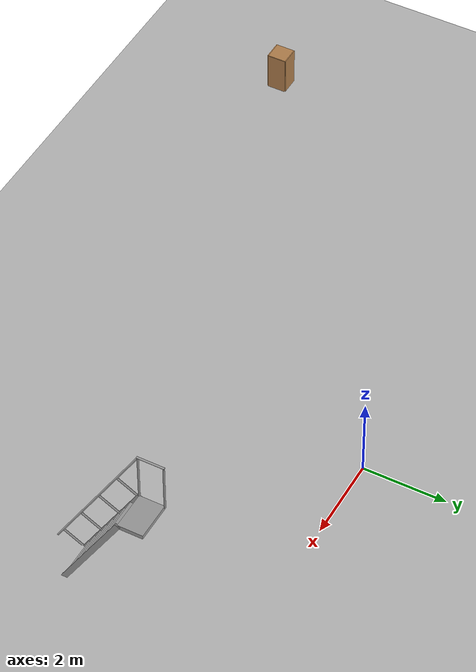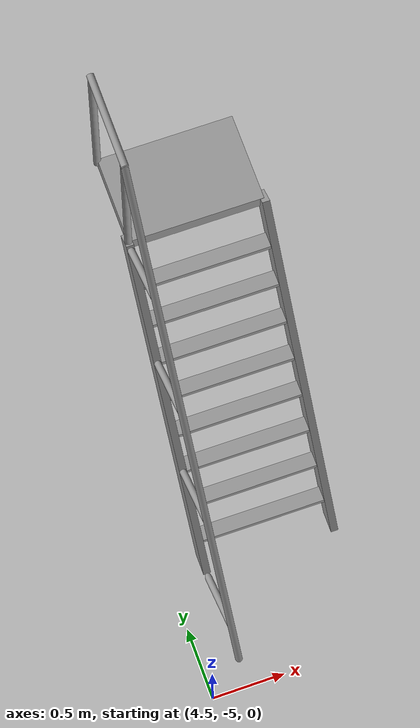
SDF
<sdf version="1.6">
 <world name="default">
  <include><uri>model://sun</uri></include>
  <model name="concrete_plane">
   <static>true</static>
   <link name="link">
    <collision name="collision"><geometry><box><size>50 23 .1</size></box></geometry></collision>
    <visual name="visual">
     <cast_shadows>false</cast_shadows>
     <geometry><box><size>50 23 .1</size></box></geometry>
     <material>
      <script>
       <uri>model://concrete_plane/materials/scripts</uri>
       <uri>model://concrete_plane/materials/textures</uri>
       <name>vrc/concrete</name>
      </script>
     </material>
    </visual>
   </link>
  </model>
  <model name="ladder_60deg_1rails">
   <static>1</static>
   <link name="step0">
    <pose>0 0.15396 0.266667 0 -0 0</pose>
    <inertial>
     <mass>9.75482</mass>
     <inertia>
      <ixx>0.00957124</ixx>
      <iyy>0.65963</iyy>
      <izz>0.666842</izz>
      <ixy>0</ixy>
      <ixz>0</ixz>
      <iyz>0</iyz>
     </inertia>
    </inertial>
    <collision name="collision"><geometry><box><size>0.9 0.1016 0.0381</size></box></geometry></collision>
    <visual name="visual">
     <geometry><box><size>0.9 0.1016 0.0381</size></box></geometry>
     <material>
      <script><uri>file://media/materials/scripts/gazebo.material</uri><name>Gazebo/Grey</name></script>
     </material>
    </visual>
   </link>
   <link name="step1">
    <pose>0 0.30792 0.533333 0 -0 0</pose>
    <inertial>
     <mass>9.75482</mass>
     <inertia>
      <ixx>0.00957124</ixx>
      <iyy>0.65963</iyy>
      <izz>0.666842</izz>
      <ixy>0</ixy>
      <ixz>0</ixz>
      <iyz>0</iyz>
     </inertia>
    </inertial>
    <collision name="collision"><geometry><box><size>0.9 0.1016 0.0381</size></box></geometry></collision>
    <visual name="visual">
     <geometry><box><size>0.9 0.1016 0.0381</size></box></geometry>
     <material>
      <script><uri>file://media/materials/scripts/gazebo.material</uri><name>Gazebo/Grey</name></script>
     </material>
    </visual>
   </link>
   <link name="step2">
    <pose>0 0.46188 0.8 0 -0 0</pose>
    <inertial>
     <mass>9.75482</mass>
     <inertia>
      <ixx>0.00957124</ixx>
      <iyy>0.65963</iyy>
      <izz>0.666842</izz>
      <ixy>0</ixy>
      <ixz>0</ixz>
      <iyz>0</iyz>
     </inertia>
    </inertial>
    <collision name="collision"><geometry><box><size>0.9 0.1016 0.0381</size></box></geometry></collision>
    <visual name="visual">
     <geometry><box><size>0.9 0.1016 0.0381</size></box></geometry>
     <material>
      <script><uri>file://media/materials/scripts/gazebo.material</uri><name>Gazebo/Grey</name></script>
     </material>
    </visual>
   </link>
   <link name="step3">
    <pose>0 0.61584 1.06667 0 -0 0</pose>
    <inertial>
     <mass>9.75482</mass>
     <inertia>
      <ixx>0.00957124</ixx>
      <iyy>0.65963</iyy>
      <izz>0.666842</izz>
      <ixy>0</ixy>
      <ixz>0</ixz>
      <iyz>0</iyz>
     </inertia>
    </inertial>
    <collision name="collision"><geometry><box><size>0.9 0.1016 0.0381</size></box></geometry></collision>
    <visual name="visual">
     <geometry><box><size>0.9 0.1016 0.0381</size></box></geometry>
     <material>
      <script><uri>file://media/materials/scripts/gazebo.material</uri><name>Gazebo/Grey</name></script>
     </material>
    </visual>
   </link>
   <link name="step4">
    <pose>0 0.7698 1.33333 0 -0 0</pose>
    <inertial>
     <mass>9.75482</mass>
     <inertia>
      <ixx>0.00957124</ixx>
      <iyy>0.65963</iyy>
      <izz>0.666842</izz>
      <ixy>0</ixy>
      <ixz>0</ixz>
      <iyz>0</iyz>
     </inertia>
    </inertial>
    <collision name="collision"><geometry><box><size>0.9 0.1016 0.0381</size></box></geometry></collision>
    <visual name="visual">
     <geometry><box><size>0.9 0.1016 0.0381</size></box></geometry>
     <material>
      <script><uri>file://media/materials/scripts/gazebo.material</uri><name>Gazebo/Grey</name></script>
     </material>
    </visual>
   </link>
   <link name="step5">
    <pose>0 0.92376 1.6 0 -0 0</pose>
    <inertial>
     <mass>9.75482</mass>
     <inertia>
      <ixx>0.00957124</ixx>
      <iyy>0.65963</iyy>
      <izz>0.666842</izz>
      <ixy>0</ixy>
      <ixz>0</ixz>
      <iyz>0</iyz>
     </inertia>
    </inertial>
    <collision name="collision"><geometry><box><size>0.9 0.1016 0.0381</size></box></geometry></collision>
    <visual name="visual">
     <geometry><box><size>0.9 0.1016 0.0381</size></box></geometry>
     <material>
      <script><uri>file://media/materials/scripts/gazebo.material</uri><name>Gazebo/Grey</name></script>
     </material>
    </visual>
   </link>
   <link name="step6">
    <pose>0 1.07772 1.86667 0 -0 0</pose>
    <inertial>
     <mass>9.75482</mass>
     <inertia>
      <ixx>0.00957124</ixx>
      <iyy>0.65963</iyy>
      <izz>0.666842</izz>
      <ixy>0</ixy>
      <ixz>0</ixz>
      <iyz>0</iyz>
     </inertia>
    </inertial>
    <collision name="collision"><geometry><box><size>0.9 0.1016 0.0381</size></box></geometry></collision>
    <visual name="visual">
     <geometry><box><size>0.9 0.1016 0.0381</size></box></geometry>
     <material>
      <script><uri>file://media/materials/scripts/gazebo.material</uri><name>Gazebo/Grey</name></script>
     </material>
    </visual>
   </link>
   <link name="step7">
    <pose>0 1.23168 2.13333 0 -0 0</pose>
    <inertial>
     <mass>9.75482</mass>
     <inertia>
      <ixx>0.00957124</ixx>
      <iyy>0.65963</iyy>
      <izz>0.666842</izz>
      <ixy>0</ixy>
      <ixz>0</ixz>
      <iyz>0</iyz>
     </inertia>
    </inertial>
    <collision name="collision"><geometry><box><size>0.9 0.1016 0.0381</size></box></geometry></collision>
    <visual name="visual">
     <geometry><box><size>0.9 0.1016 0.0381</size></box></geometry>
     <material>
      <script><uri>file://media/materials/scripts/gazebo.material</uri><name>Gazebo/Grey</name></script>
     </material>
    </visual>
   </link>
   <link name="landing">
    <pose>0 1.68564 2.4 0 -0 0</pose>
    <inertial>
     <mass>57.6072</mass>
     <inertia><ixx>1.73518</ixx><iyy>3.89545</iyy><izz>5.6167</izz><ixy>0</ixy><ixz>0</ixz><iyz>0</iyz></inertia>
    </inertial>
    <collision name="collision"><geometry><box><size>0.9 0.6 0.1016</size></box></geometry></collision>
    <visual name="visual">
     <geometry><box><size>0.9 0.6 0.1016</size></box></geometry>
     <material>
      <script><uri>file://media/materials/scripts/gazebo.material</uri><name>Gazebo/Grey</name></script>
     </material>
    </visual>
   </link>
   <link name="left_side_wall">
    <pose>-0.45 0.69282 1.2 1.0472 -0 0</pose>
    <collision name="collision"><geometry><box><size>0.0508 2.85128 0.13</size></box></geometry></collision>
    <visual name="visual">
     <geometry><box><size>0.0508 2.85128 0.13</size></box></geometry>
     <material>
      <script><uri>file://media/materials/scripts/gazebo.material</uri><name>Gazebo/Grey</name></script>
     </material>
    </visual>
   </link>
   <link name="right_side_wall">
    <pose>0.45 0.69282 1.2 1.0472 -0 0</pose>
    <collision name="collision"><geometry><box><size>0.0508 2.85128 0.13</size></box></geometry></collision>
    <visual name="visual">
     <geometry><box><size>0.0508 2.85128 0.13</size></box></geometry>
     <material>
      <script><uri>file://media/materials/scripts/gazebo.material</uri><name>Gazebo/Grey</name></script>
     </material>
    </visual>
   </link>
   <link name="left_railing_long">
    <pose>-0.45 0.34282 1.80622 -0.523599 0 0</pose>
    <collision name="collision">
     <geometry><cylinder><radius>0.02413</radius><length>4.17128</length></cylinder></geometry>
    </collision>
    <visual name="visual">
     <geometry><cylinder><radius>0.02413</radius><length>4.17128</length></cylinder></geometry>
     <material>
      <script><uri>file://media/materials/scripts/gazebo.material</uri><name>Gazebo/Grey</name></script>
     </material>
    </visual>
   </link>
   <link name="left_railing_upright0">
    <pose>-0.45 -0.274963 0.15875 1.0472 -0 0</pose>
    <collision name="collision">
     <geometry><cylinder><radius>0.02413</radius><length>0.541218</length></cylinder></geometry>
    </collision>
    <visual name="visual">
     <geometry><cylinder><radius>0.02413</radius><length>0.541218</length></cylinder></geometry>
     <material>
      <script><uri>file://media/materials/scripts/gazebo.material</uri><name>Gazebo/Grey</name></script>
     </material>
    </visual>
   </link>
   <link name="left_railing_upright1">
    <pose>-0.45 0.186917 0.95875 1.0472 -0 0</pose>
    <collision name="collision">
     <geometry><cylinder><radius>0.02413</radius><length>0.541218</length></cylinder></geometry>
    </collision>
    <visual name="visual">
     <geometry><cylinder><radius>0.02413</radius><length>0.541218</length></cylinder></geometry>
     <material>
      <script><uri>file://media/materials/scripts/gazebo.material</uri><name>Gazebo/Grey</name></script>
     </material>
    </visual>
   </link>
   <link name="left_railing_upright2">
    <pose>-0.45 0.648797 1.75875 1.0472 -0 0</pose>
    <collision name="collision">
     <geometry><cylinder><radius>0.02413</radius><length>0.541218</length></cylinder></geometry>
    </collision>
    <visual name="visual">
     <geometry><cylinder><radius>0.02413</radius><length>0.541218</length></cylinder></geometry>
     <material>
      <script><uri>file://media/materials/scripts/gazebo.material</uri><name>Gazebo/Grey</name></script>
     </material>
    </visual>
   </link>
   <link name="left_railing_upright3">
    <pose>-0.45 1.11068 2.55875 1.0472 -0 0</pose>
    <collision name="collision">
     <geometry><cylinder><radius>0.02413</radius><length>0.541218</length></cylinder></geometry>
    </collision>
    <visual name="visual">
     <geometry><cylinder><radius>0.02413</radius><length>0.541218</length></cylinder></geometry>
     <material>
      <script><uri>file://media/materials/scripts/gazebo.material</uri><name>Gazebo/Grey</name></script>
     </material>
    </visual>
   </link>
   <link name="left_railing_landing_top">
    <pose>-0.45 1.68564 3.61244 1.5708 -0 0</pose>
    <collision name="collision">
     <geometry><cylinder><radius>0.02413</radius><length>0.64826</length></cylinder></geometry>
    </collision>
    <visual name="visual">
     <geometry><cylinder><radius>0.02413</radius><length>0.64826</length></cylinder></geometry>
     <material>
      <script><uri>file://media/materials/scripts/gazebo.material</uri><name>Gazebo/Grey</name></script>
     </material>
    </visual>
   </link>
   <link name="left_railing_landing_upright_0">
    <pose>-0.45 1.38564 3.00622 0 -0 0</pose>
    <collision name="collision">
     <geometry><cylinder><radius>0.02413</radius><length>1.21244</length></cylinder></geometry>
    </collision>
    <visual name="visual">
     <geometry><cylinder><radius>0.02413</radius><length>1.21244</length></cylinder></geometry>
     <material>
      <script><uri>file://media/materials/scripts/gazebo.material</uri><name>Gazebo/Grey</name></script>
     </material>
    </visual>
   </link>
   <link name="left_railing_landing_upright_1">
    <pose>-0.45 1.98564 3.00622 0 -0 0</pose>
    <collision name="collision">
     <geometry><cylinder><radius>0.02413</radius><length>1.21244</length></cylinder></geometry>
    </collision>
    <visual name="visual">
     <geometry><cylinder><radius>0.02413</radius><length>1.21244</length></cylinder></geometry>
     <material>
      <script><uri>file://media/materials/scripts/gazebo.material</uri><name>Gazebo/Grey</name></script>
     </material>
    </visual>
   </link>
   <pose>5.19811 -4.14187 0 0 -0 0</pose>
  </model>
  <model name="cabinet">
   <static>1</static>
   <link name="cabinet_bottom_plate">
    <inertial>
     <pose>0 0 -1 0 -0 0</pose>
     <inertia><ixx>2.05</ixx><ixy>0</ixy><ixz>0</ixz><iyy>2.05</iyy><iyz>0</iyz><izz>2.05</izz></inertia>
     <mass>25</mass>
    </inertial>
    <collision name="cabinet_bottom_plate_geom">
     <pose>0 0 0.01 0 -0 0</pose>
     <geometry><box><size>0.45 0.45 0.02</size></box></geometry>
    </collision>
    <visual name="cabinet_bottom_plate_geom_visual">
     <pose>0 0 0.01 0 -0 0</pose>
     <geometry><box><size>0.45 0.45 0.02</size></box></geometry>
     <material>
      <script><uri>file://media/materials/scripts/gazebo.material</uri><name>Gazebo/Wood</name></script>
     </material>
    </visual>
    <collision name="cabinet_bottom_plate_geom_cabinet_back_plate">
     <pose>0.235 0 0.51 0 -0 0</pose>
     <geometry><box><size>0.02 0.45 1.02</size></box></geometry>
    </collision>
    <visual name="cabinet_bottom_plate_geom_cabinet_back_plate_visual">
     <pose>0.235 0 0.51 0 -0 0</pose>
     <geometry><box><size>0.02 0.45 1.02</size></box></geometry>
     <material>
      <script><uri>file://media/materials/scripts/gazebo.material</uri><name>Gazebo/Wood</name></script>
     </material>
    </visual>
    <collision name="cabinet_bottom_plate_geom_cabinet_left_plate">
     <pose>0 0.235 0.51 0 -0 0</pose>
     <geometry><box><size>0.45 0.02 1.02</size></box></geometry>
    </collision>
    <visual name="cabinet_bottom_plate_geom_cabinet_left_plate_visual">
     <pose>0 0.235 0.51 0 -0 0</pose>
     <geometry><box><size>0.45 0.02 1.02</size></box></geometry>
     <material>
      <script><uri>file://media/materials/scripts/gazebo.material</uri><name>Gazebo/Wood</name></script>
     </material>
    </visual>
    <collision name="cabinet_bottom_plate_geom_cabinet_middle_plate">
     <pose>0 0 0.51 0 -0 0</pose>
     <geometry><box><size>0.45 0.45 0.02</size></box></geometry>
    </collision>
    <visual name="cabinet_bottom_plate_geom_cabinet_middle_plate_visual">
     <pose>0 0 0.51 0 -0 0</pose>
     <geometry><box><size>0.45 0.45 0.02</size></box></geometry>
     <material>
      <script><uri>file://media/materials/scripts/gazebo.material</uri><name>Gazebo/Wood</name></script>
     </material>
    </visual>
    <collision name="cabinet_bottom_plate_geom_cabinet_right_plate">
     <pose>0 -0.235 0.51 0 -0 0</pose>
     <geometry><box><size>0.45 0.02 1.02</size></box></geometry>
    </collision>
    <visual name="cabinet_bottom_plate_geom_cabinet_right_plate_visual">
     <pose>0 -0.235 0.51 0 -0 0</pose>
     <geometry><box><size>0.45 0.02 1.02</size></box></geometry>
     <material>
      <script><uri>file://media/materials/scripts/gazebo.material</uri><name>Gazebo/Wood</name></script>
     </material>
    </visual>
    <collision name="cabinet_bottom_plate_geom_cabinet_top_plate">
     <pose>0 0 1.01 0 -0 0</pose>
     <geometry><box><size>0.45 0.45 0.02</size></box></geometry>
    </collision>
    <visual name="cabinet_bottom_plate_geom_cabinet_top_plate_visual">
     <pose>0 0 1.01 0 -0 0</pose>
     <geometry><box><size>0.45 0.45 0.02</size></box></geometry>
     <material>
      <script><uri>file://media/materials/scripts/gazebo.material</uri><name>Gazebo/Wood</name></script>
     </material>
    </visual>
   </link>
   <pose>-10.1169 -7.43305 0 0 -0 0</pose>
  </model>
 </world>
</sdf>
